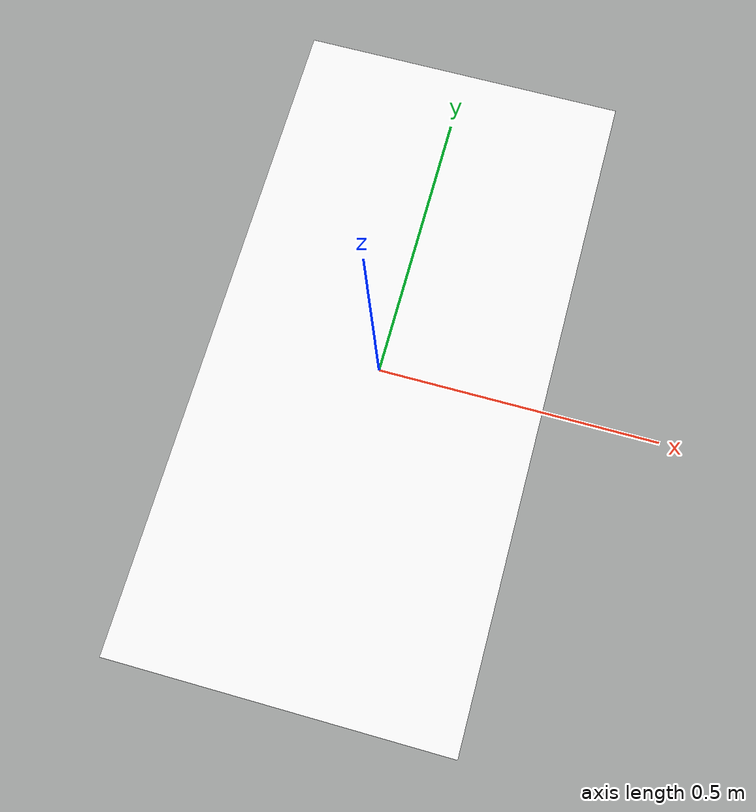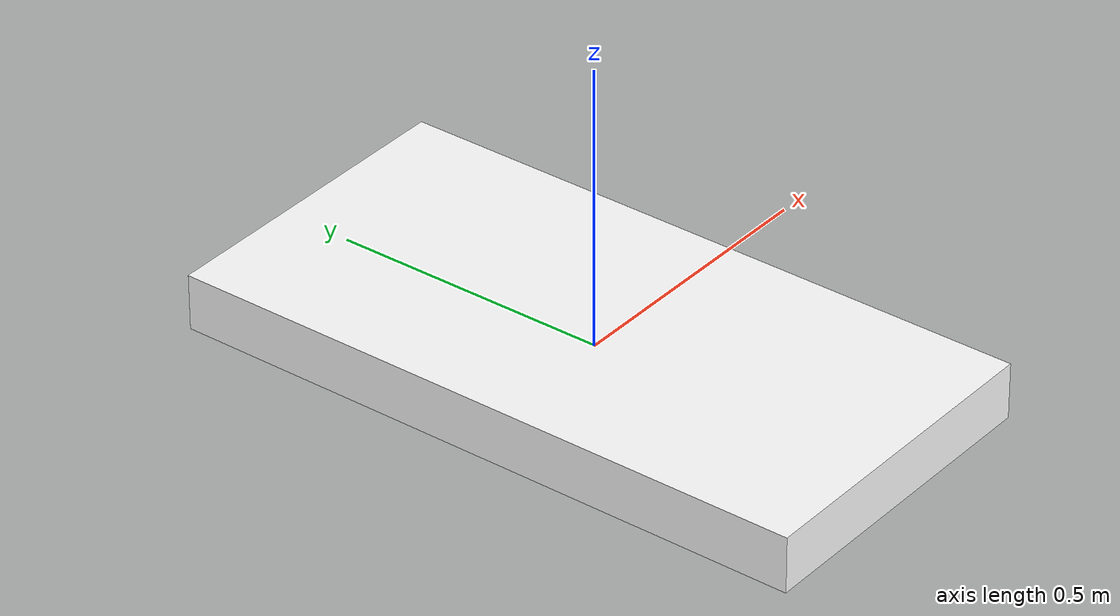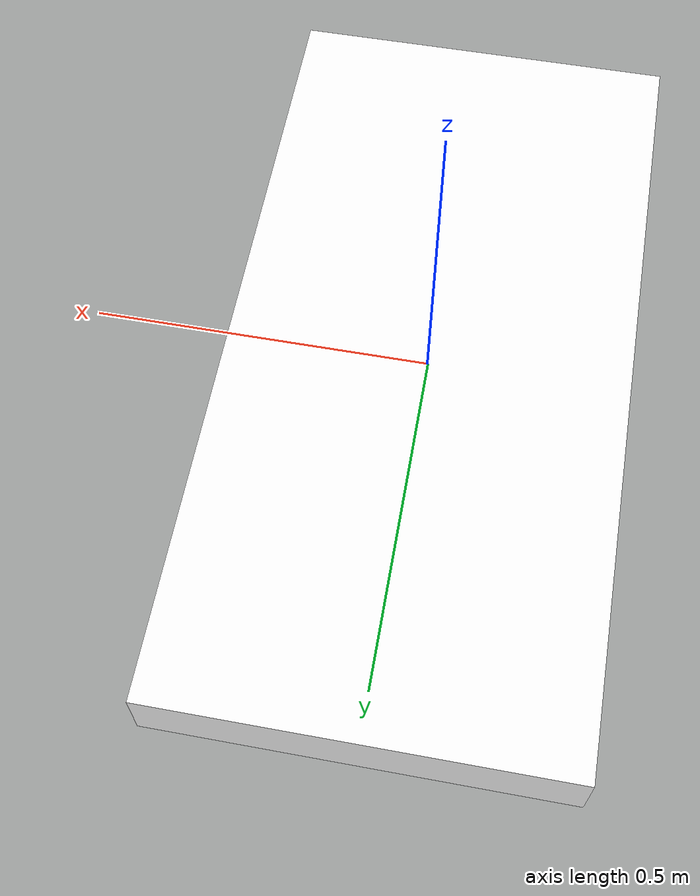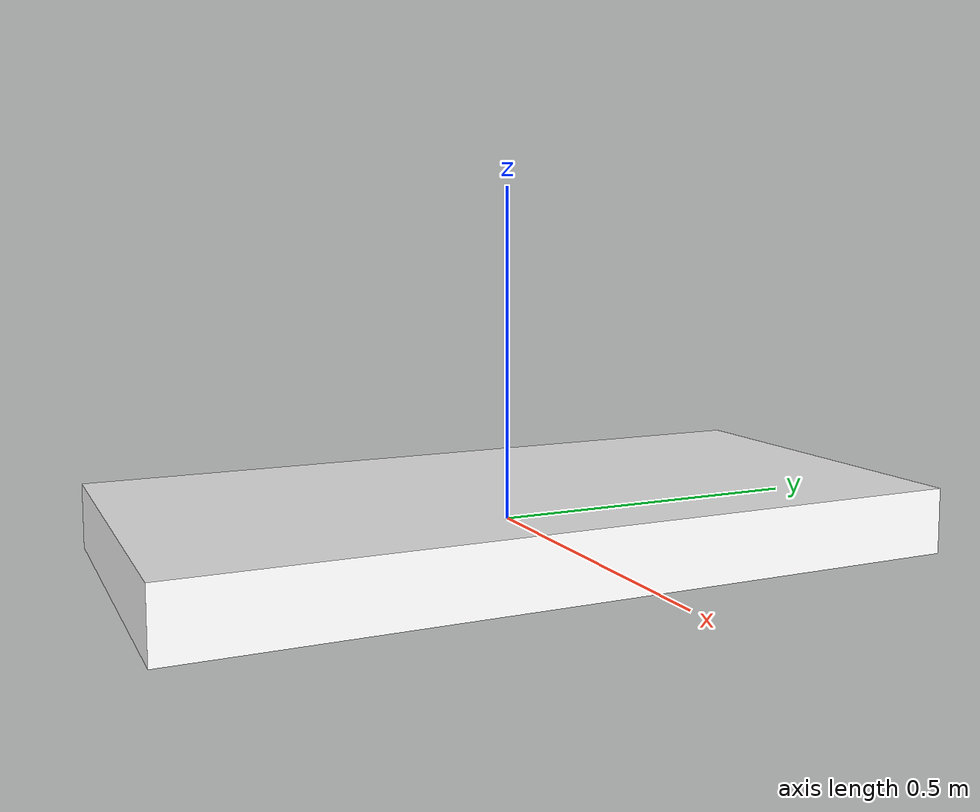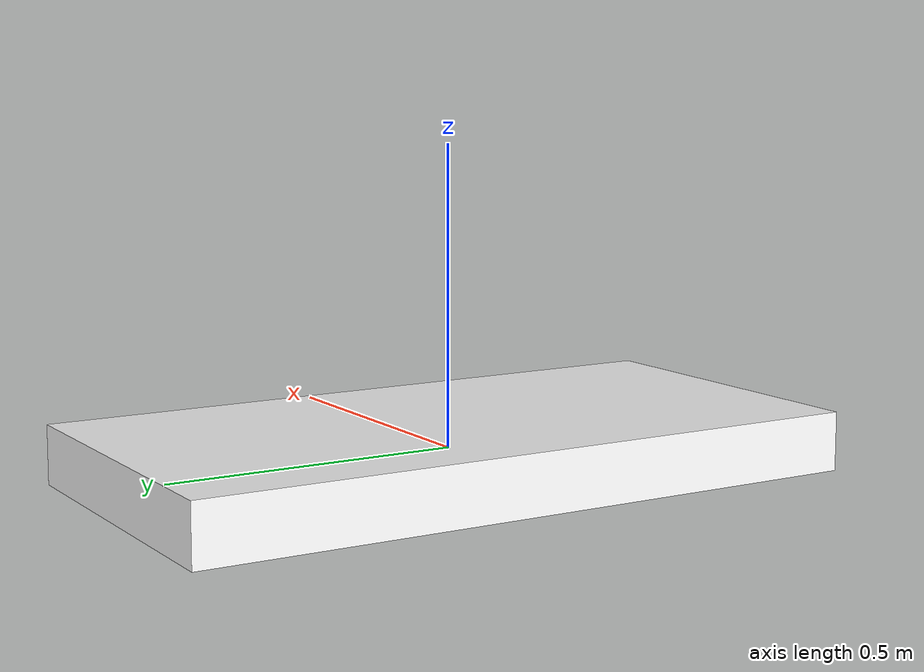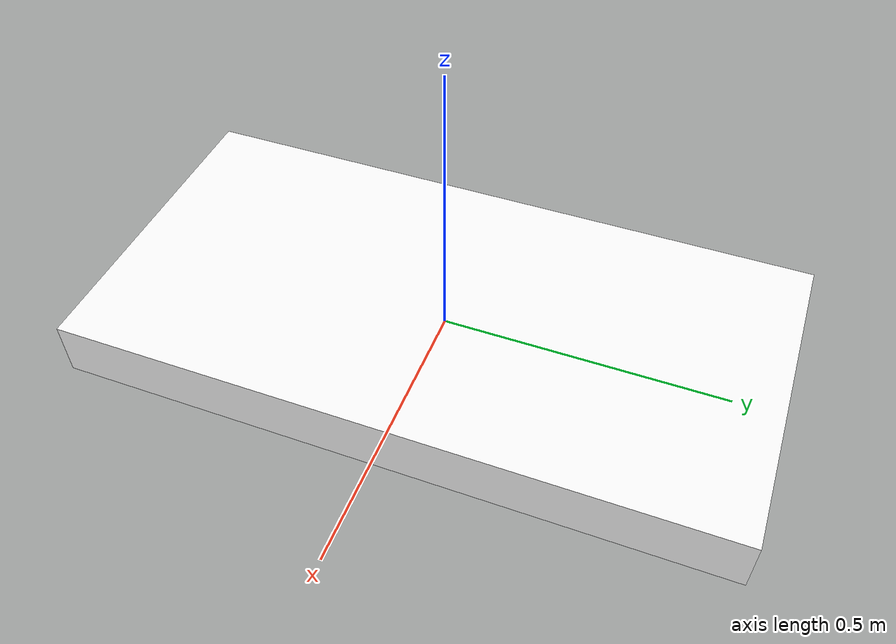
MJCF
<mujoco model="table">
    <compiler angle="radian" autolimits="true" />
    <option impratio="10" />
    <default>
        <default class="visual">
            <geom type="mesh" contype="0" conaffinity="0" group="2" />
        </default>
        <default class="collision">
            <geom type="mesh" group="3" />
        </default>
    </default>

    <asset>
        <material name="table" rgba="1 1 1 1" reflectance="0" specular="0.0"
            shininess="0" />
    </asset>
    <worldbody>
        <body name="table">
            <geom size="0.2915 0.5825 0.05" class="visual" type="box"
                material="table" />
            <geom size="0.2915 0.5825 0.05" class="collision" type="box" />
        </body>
    </worldbody>
</mujoco>
